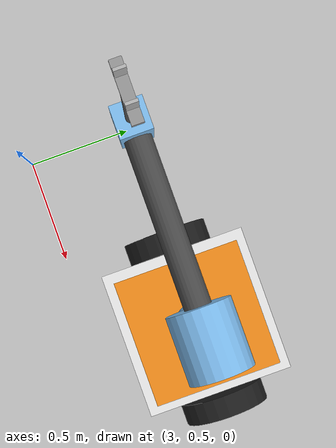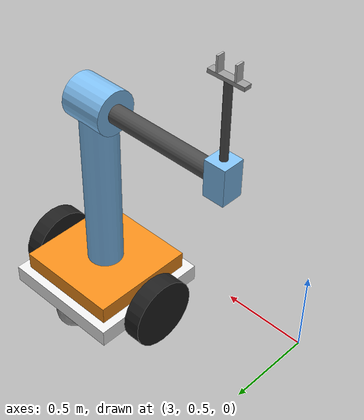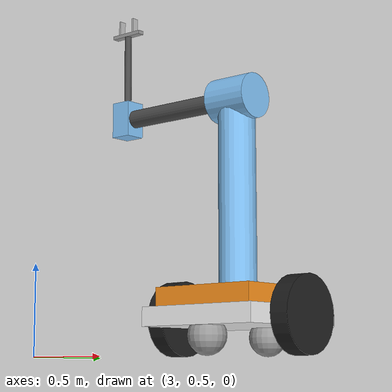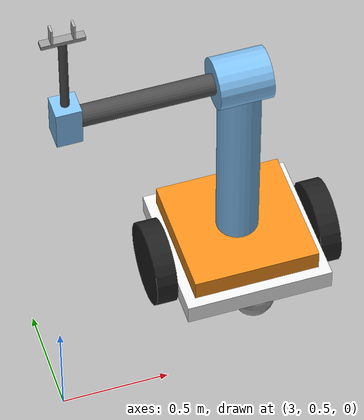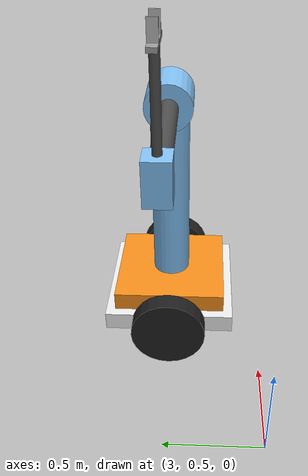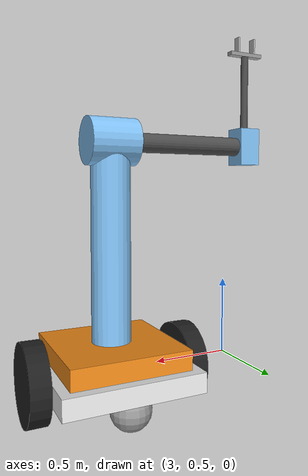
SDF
<?xml version="1.0" ?>
<sdf version="1.6">
    <!--            复合移动机器人 (DWR + RRP 机械臂)            -->
    <model name="dwr_rrp_robot">
      <pose>4 1 0.2 0 0 1.57079632679</pose>

      <!-- ==================== 1. DWR 车体部分 ==================== -->
      <link name="chassis">
        <pose>0 0 0 0 0 0</pose>
        <inertial>
          <mass>10.0</mass>
          <inertia>
            <ixx>0.1</ixx><iyy>0.1</iyy><izz>0.2</izz>
          </inertia>
        </inertial>

        <visual name="chassis_visual">
          <geometry>
            <box><size>0.7 0.7 0.1</size></box>
          </geometry>
          <material>
            <script>
              <uri>file://media/materials/scripts/gazebo.material</uri>
              <name>Gazebo/White</name>
            </script>
          </material>
        </visual>
        <collision name="chassis_collision">
          <geometry>
            <box><size>0.7 0.7 0.1</size></box>
          </geometry>
        </collision>

        <visual name="caster_front_visual">
          <pose>0.25 0 -0.1 0 0 0</pose>
          <geometry><sphere><radius>0.1</radius></sphere></geometry>
          <material>
            <script>
              <uri>file://media/materials/scripts/gazebo.material</uri>
              <name>Gazebo/Grey</name>
            </script>
          </material>
        </visual>
        <collision name="caster_front_collision">
          <pose>0.25 0 -0.1 0 0 0</pose>
          <geometry><sphere><radius>0.1</radius></sphere></geometry>
          <surface>
            <friction><ode><mu>0.0</mu><mu2>0.0</mu2></ode></friction>
          </surface>
        </collision>

        <visual name="caster_rear_visual">
          <pose>-0.25 0 -0.1 0 0 0</pose>
          <geometry><sphere><radius>0.1</radius></sphere></geometry>
          <material>
            <script>
              <uri>file://media/materials/scripts/gazebo.material</uri>
              <name>Gazebo/Grey</name>
            </script>
          </material>
        </visual>
        <collision name="caster_rear_collision">
          <pose>-0.25 0 -0.1 0 0 0</pose>
          <geometry><sphere><radius>0.1</radius></sphere></geometry>
          <surface>
            <friction><ode><mu>0.0</mu><mu2>0.0</mu2></ode></friction>
          </surface>
        </collision>
      </link>

      <link name="left_wheel">
        <pose>0 0.4 0 -1.57079632679 0 0</pose>
        <inertial>
          <mass>2.0</mass>
          <inertia>
            <ixx>0.02</ixx><iyy>0.02</iyy><izz>0.04</izz>
          </inertia>
        </inertial>
        <visual name="visual">
          <geometry><cylinder><radius>0.2</radius><length>0.1</length></cylinder></geometry>
          <material>
            <script>
              <uri>file://media/materials/scripts/gazebo.material</uri>
              <name>Gazebo/Black</name>
            </script>
          </material>
        </visual>
        <collision name="collision">
          <geometry><cylinder><radius>0.2</radius><length>0.1</length></cylinder></geometry>
        </collision>
      </link>

      <link name="right_wheel">
        <pose>0 -0.4 0 -1.57079632679 0 0</pose>
        <inertial>
          <mass>2.0</mass>
          <inertia>
            <ixx>0.02</ixx><iyy>0.02</iyy><izz>0.04</izz>
          </inertia>
        </inertial>
        <visual name="visual">
          <geometry><cylinder><radius>0.2</radius><length>0.1</length></cylinder></geometry>
          <material>
            <script>
              <uri>file://media/materials/scripts/gazebo.material</uri>
              <name>Gazebo/Black</name>
            </script>
          </material>
        </visual>
        <collision name="collision">
          <geometry><cylinder><radius>0.2</radius><length>0.1</length></cylinder></geometry>
        </collision>
      </link>

      <joint name="left_wheel_joint" type="revolute">
        <parent>chassis</parent>
        <child>left_wheel</child>
        <axis><xyz>0 0 1</xyz></axis>
      </joint>

      <joint name="right_wheel_joint" type="revolute">
        <parent>chassis</parent>
        <child>right_wheel</child>
        <axis><xyz>0 0 1</xyz></axis>
      </joint>

      <!-- ==================== 2. RRP 机械臂部分 ==================== -->
      <link name="base_link">
        <pose>0 0 0.1 0 0 0</pose>
        <inertial>
          <mass>20.0</mass>
          <inertia>
            <ixx>0.2</ixx><iyy>0.2</iyy><izz>0.4</izz>
          </inertia>
        </inertial>
        <collision name="base_collision">
          <geometry><box><size>0.6 0.6 0.1</size></box></geometry>
        </collision>
        <visual name="base_visual">
          <geometry><box><size>0.6 0.6 0.1</size></box></geometry>
          <material>
            <script>
              <uri>file://media/materials/scripts/gazebo.material</uri>
              <name>Gazebo/Orange</name>
            </script>
          </material>
        </visual>
      </link>

      <joint name="chassis_to_arm_base" type="fixed">
        <parent>chassis</parent>
        <child>base_link</child>
      </joint>

      <link name="link1">
        <pose>0 0 0.15 0 0 0</pose>
        <inertial>
          <pose>0 0 0.5 0 0 0</pose>
          <mass>5.0</mass>
          <inertia>
            <ixx>0.4</ixx><iyy>0.4</iyy><izz>0.02</izz>
          </inertia>
        </inertial>
        <collision name="link1_collision">
          <pose>0 0 0.5 0 0 0</pose>
          <geometry><cylinder><radius>0.1</radius><length>1.0</length></cylinder></geometry>
        </collision>
        <visual name="link1_visual">
          <pose>0 0 0.5 0 0 0</pose>
          <geometry><cylinder><radius>0.1</radius><length>1.0</length></cylinder></geometry>
          <material>
            <script>
              <uri>file://media/materials/scripts/gazebo.material</uri>
              <name>Gazebo/SkyBlue</name>
            </script>
          </material>
        </visual>
        <visual name="joint2_visual">
           <pose>0 0 1.0 1.5707963 0 0</pose>
           <geometry><cylinder><radius>0.12</radius><length>0.25</length></cylinder></geometry>
           <material>
             <script>
               <uri>file://media/materials/scripts/gazebo.material</uri>
               <name>Gazebo/SkyBlue</name>
             </script>
           </material>
        </visual>
      </link>

      <joint name="joint1" type="revolute">
        <parent>base_link</parent>
        <child>link1</child>
        <axis>
          <xyz>0 0 1</xyz>
          <limit>
            <lower>-3.14159</lower>
            <upper>3.14159</upper>
            <effort>200</effort>
            <velocity>2.0</velocity>
          </limit>
        </axis>
      </joint>

      <link name="link2">
        <pose>0 0 1.15 0 0 0</pose>
        <inertial>
          <pose>0 0.4 0 0 0 0</pose>
          <mass>3.0</mass>
          <inertia>
            <ixx>0.2</ixx><iyy>0.01</iyy><izz>0.2</izz>
          </inertia>
        </inertial>
        <collision name="link2_collision">
          <pose>0 0.4 0 1.5707963 0 0</pose>
          <geometry><cylinder><radius>0.05</radius><length>0.8</length></cylinder></geometry>
        </collision>
        <visual name="link2_visual">
          <pose>0 0.4 0 1.5707963 0 0</pose>
          <geometry><cylinder><radius>0.05</radius><length>0.8</length></cylinder></geometry>
          <material>
            <script>
              <uri>file://media/materials/scripts/gazebo.material</uri>
              <name>Gazebo/DarkGrey</name>
            </script>
          </material>
        </visual>
        <visual name="sleeve_visual">
          <pose>0 0.8 0 0 0 0</pose>
          <geometry><box><size>0.12 0.12 0.2</size></box></geometry>
          <material>
            <script>
              <uri>file://media/materials/scripts/gazebo.material</uri>
              <name>Gazebo/SkyBlue</name>
            </script>
          </material>
        </visual>
      </link>

      <joint name="joint2" type="revolute">
        <parent>link1</parent>
        <child>link2</child>
        <axis>
          <xyz>0 1 0</xyz>
          <limit>
            <lower>-1.5707</lower>
            <upper>1.60</upper>
            <effort>200</effort>
            <velocity>1.5</velocity>
          </limit>
        </axis>
      </joint>

      <!-- ==================== 3. 伸缩杆与夹爪 ==================== -->
      <link name="link3">
        <pose>0 0.8 1.15 0 0 0</pose>
        <inertial>
          <pose>0 0 0.25 0 0 0</pose>
          <mass>1.0</mass>
          <inertia>
            <ixx>0.01</ixx><iyy>0.01</iyy><izz>0.002</izz>
          </inertia>
        </inertial>
        <collision name="link3_collision">
          <pose>0 0 0.25 0 0 0</pose>
          <geometry><cylinder><radius>0.02</radius><length>0.5</length></cylinder></geometry>
        </collision>
        <visual name="link3_visual">
          <pose>0 0 0.25 0 0 0</pose>
          <geometry><cylinder><radius>0.02</radius><length>0.5</length></cylinder></geometry>
          <material>
            <script>
              <uri>file://media/materials/scripts/gazebo.material</uri>
              <name>Gazebo/DarkGrey</name>
            </script>
          </material>
        </visual>

        <!-- U型底座（末端执行器） -->
        <visual name="ee_visual">
          <pose>0 0 0.51 0 0 0</pose>
          <geometry>
            <box><size>0.04 0.20 0.02</size></box>
          </geometry>
          <material>
            <script>
              <uri>file://media/materials/scripts/gazebo.material</uri>
              <name>Gazebo/Grey</name>
            </script>
          </material>
        </visual>
        <collision name="ee_collision">
          <pose>0 0 0.51 0 0 0</pose>
          <geometry>
            <box><size>0.04 0.20 0.02</size></box>
          </geometry>
        </collision>
      </link>

      <joint name="joint3" type="prismatic">
        <parent>link2</parent>
        <child>link3</child>
        <axis>
          <xyz>0 0 1</xyz>
          <limit>
            <lower>-0.4</lower>
            <upper>0.1</upper>
            <effort>300</effort>
            <velocity>1.0</velocity>
          </limit>
          <dynamics>
            <damping>0.01</damping>
            <friction>0.01</friction>
          </dynamics>
        </axis>
      </joint>

      <joint name="left_finger_joint" type="prismatic">
        <parent>link3</parent>
        <child>left_finger</child>
        <axis>
          <xyz>0 1 0</xyz>
          <limit><lower>0</lower><upper>0.05</upper><effort>20</effort></limit>
        </axis>
      </joint>
      <link name="left_finger">
        <pose>0 0.85 1.71 0 0 0</pose>
        <inertial>
          <mass>0.1</mass>
          <inertia><ixx>0.0001</ixx><iyy>0.0001</iyy><izz>0.0001</izz></inertia>
        </inertial>
        <collision name="col"><geometry><box><size>0.04 0.01 0.08</size></box></geometry></collision>
        <visual name="vis"><geometry><box><size>0.04 0.01 0.08</size></box></geometry></visual>
      </link>

      <joint name="right_finger_joint" type="prismatic">
        <parent>link3</parent>
        <child>right_finger</child>
        <axis>
          <xyz>0 -1 0</xyz>
          <limit><lower>0</lower><upper>0.05</upper><effort>20</effort></limit>
        </axis>
      </joint>
      <link name="right_finger">
        <pose>0 0.75 1.71 0 0 0</pose>
        <inertial>
          <mass>0.1</mass>
          <inertia><ixx>0.0001</ixx><iyy>0.0001</iyy><izz>0.0001</izz></inertia>
        </inertial>
        <collision name="col"><geometry><box><size>0.04 0.01 0.08</size></box></geometry></collision>
        <visual name="vis"><geometry><box><size>0.04 0.01 0.08</size></box></geometry></visual>
      </link>

      <!-- ==================== 4. 控制插件 ==================== -->
      <plugin name="diff_drive" filename="libgazebo_ros_diff_drive.so">
        <rosDebugLevel>Debug</rosDebugLevel>
        <publishWheelTF>true</publishWheelTF>
        <robotNamespace>/</robotNamespace>
        <publishTf>1</publishTf>
        <publishWheelJointState>true</publishWheelJointState>
        <alwaysOn>true</alwaysOn>
        <updateRate>100.0</updateRate>
        <leftJoint>left_wheel_joint</leftJoint>
        <rightJoint>right_wheel_joint</rightJoint>
        <wheelSeparation>0.8</wheelSeparation>
        <wheelDiameter>0.4</wheelDiameter>
        <torque>20</torque>
        <commandTopic>cmd_vel</commandTopic>
        <odometryTopic>odom</odometryTopic>
        <odometryFrame>odom</odometryFrame>
        <robotBaseFrame>chassis</robotBaseFrame>
      </plugin>
    </model>
</sdf>
